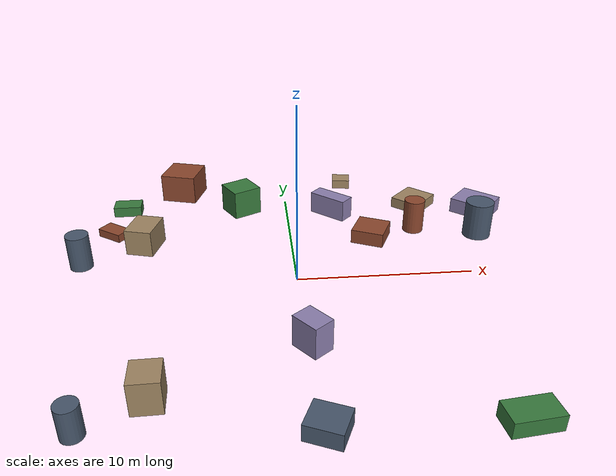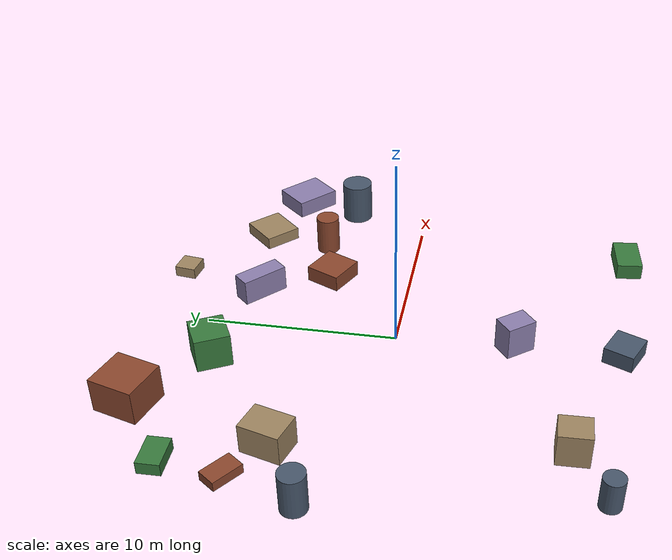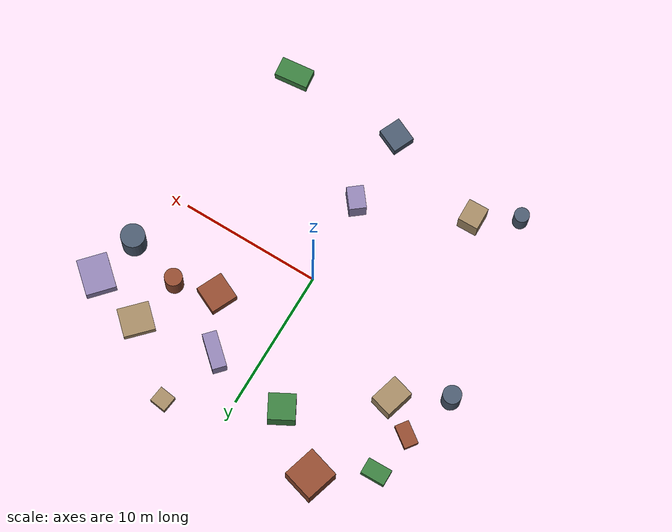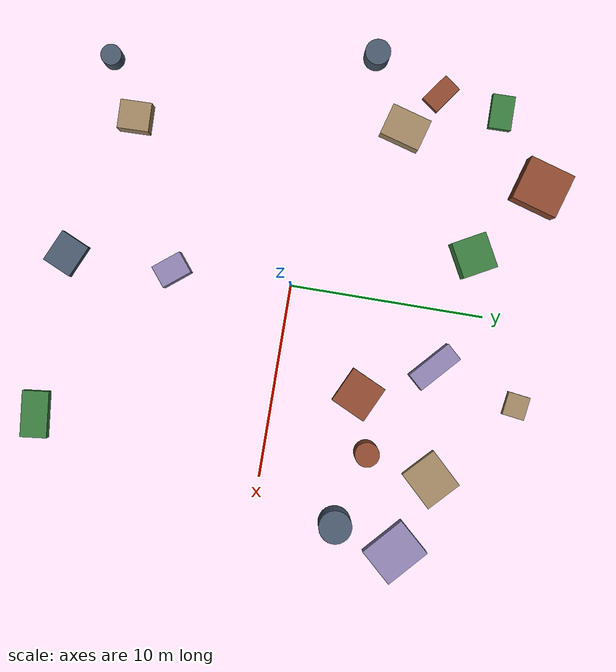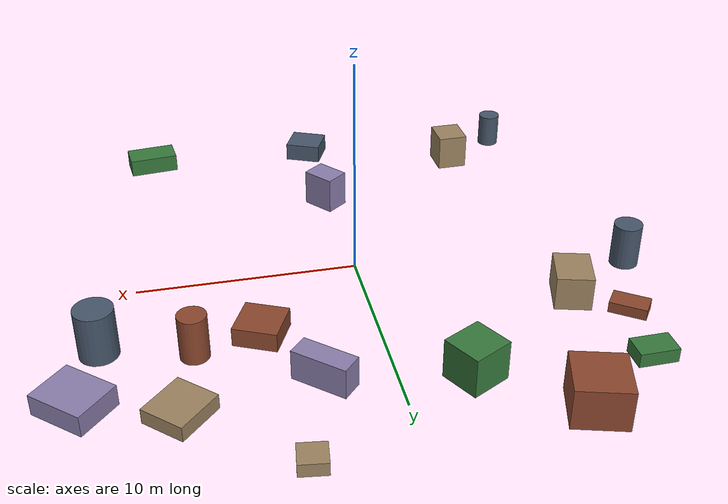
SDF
<sdf version="1.10">
 <world name="robotx_task1_uav_view">
  <gravity>0 0 -9.81</gravity>
  <physics name="physics" type="ode">
   <max_step_size>0.002</max_step_size>
   <real_time_factor>1.0</real_time_factor>
  </physics>
  <scene>
   <ambient>0.22 0.20 0.18 1.0</ambient>
   <background>0.74 0.55 0.44 1.0</background>
   <shadows>true</shadows>
   <grid>false</grid>
  </scene>
  <light name="sun" type="directional">
   <pose>0 0 300 0 0 0</pose>
   <diffuse>0.95 0.74 0.56 1.0</diffuse>
   <specular>1.00 0.87 0.71 1.0</specular>
   <direction>-0.40 0.20 -0.88</direction>
   <attenuation>
    <range>2500</range>
    <constant>0.85</constant>
    <linear>0.001</linear>
    <quadratic>0.00005</quadratic>
   </attenuation>
  </light>
  <plugin filename="gz-sim-physics-system" name="gz::sim::systems::Physics"/>
  <plugin filename="gz-sim-user-commands-system" name="gz::sim::systems::UserCommands"/>
  <plugin filename="gz-sim-scene-broadcaster-system" name="gz::sim::systems::SceneBroadcaster"/>
  <plugin filename="gz-sim-sensors-system" name="gz::sim::systems::Sensors">
   <render_engine>ogre2</render_engine>
  </plugin>
  <model name="scene_clutter_box_000">
   <static>true</static>
   <pose>4.206 12.406 0.317 0 0 3.008842</pose>
   <link name="link">
    <visual name="v">
     <geometry><box><size>1.195 1.147 0.593</size></box></geometry>
     <material><ambient>0.45 0.38 0.32 1.0</ambient><diffuse>0.62 0.52 0.38 1.0</diffuse></material>
    </visual>
   </link>
  </model>
  <model name="scene_clutter_cyl_001">
   <static>true</static>
   <pose>-12.269 2.422 1.083 0 0 -0.341812</pose>
   <link name="link">
    <visual name="v">
     <geometry><cylinder><radius>0.649</radius><length>2.065</length></cylinder></geometry>
     <material><ambient>0.18 0.22 0.28 1.0</ambient><diffuse>0.28 0.34 0.42 1.0</diffuse></material>
    </visual>
   </link>
  </model>
  <model name="scene_clutter_box_002">
   <static>true</static>
   <pose>-6.965 11.778 0.937 0 0 -1.853826</pose>
   <link name="link">
    <visual name="v">
     <geometry><box><size>2.409 2.314 1.835</size></box></geometry>
     <material><ambient>0.35 0.16 0.12 1.0</ambient><diffuse>0.55 0.28 0.18 1.0</diffuse></material>
    </visual>
   </link>
  </model>
  <model name="scene_clutter_box_003">
   <static>true</static>
   <pose>-3.004 8.917 0.918 0 0 0.498227</pose>
   <link name="link">
    <visual name="v">
     <geometry><box><size>1.876 1.817 1.796</size></box></geometry>
     <material><ambient>0.12 0.30 0.14 1.0</ambient><diffuse>0.22 0.48 0.24 1.0</diffuse></material>
    </visual>
   </link>
  </model>
  <model name="scene_clutter_box_004">
   <static>true</static>
   <pose>2.912 7.903 0.707 0 0 -0.736890</pose>
   <link name="link">
    <visual name="v">
     <geometry><box><size>2.537 1.006 1.374</size></box></geometry>
     <material><ambient>0.40 0.35 0.50 1.0</ambient><diffuse>0.55 0.50 0.68 1.0</diffuse></material>
    </visual>
   </link>
  </model>
  <model name="scene_clutter_box_005">
   <static>true</static>
   <pose>8.648 8.703 0.357 0 0 -2.332566</pose>
   <link name="link">
    <visual name="v">
     <geometry><box><size>2.212 2.010 0.673</size></box></geometry>
     <material><ambient>0.45 0.38 0.32 1.0</ambient><diffuse>0.62 0.52 0.38 1.0</diffuse></material>
    </visual>
   </link>
  </model>
  <model name="scene_clutter_cyl_006">
   <static>true</static>
   <pose>-9.999 -10.845 0.880 0 0 1.343447</pose>
   <link name="link">
    <visual name="v">
     <geometry><cylinder><radius>0.532</radius><length>1.660</length></cylinder></geometry>
     <material><ambient>0.18 0.22 0.28 1.0</ambient><diffuse>0.28 0.34 0.42 1.0</diffuse></material>
    </visual>
   </link>
  </model>
  <model name="scene_clutter_box_007">
   <static>true</static>
   <pose>4.946 4.340 0.451 0 0 2.702315</pose>
   <link name="link">
    <visual name="v">
     <geometry><box><size>1.972 1.954 0.861</size></box></geometry>
     <material><ambient>0.35 0.16 0.12 1.0</ambient><diffuse>0.55 0.28 0.18 1.0</diffuse></material>
    </visual>
   </link>
  </model>
  <model name="scene_clutter_box_008">
   <static>true</static>
   <pose>-10.515 9.218 0.344 0 0 -1.555133</pose>
   <link name="link">
    <visual name="v">
     <geometry><box><size>1.153 1.753 0.647</size></box></geometry>
     <material><ambient>0.12 0.30 0.14 1.0</ambient><diffuse>0.22 0.48 0.24 1.0</diffuse></material>
    </visual>
   </link>
  </model>
  <model name="scene_clutter_box_009">
   <static>true</static>
   <pose>12.584 7.478 0.491 0 0 0.837091</pose>
   <link name="link">
    <visual name="v">
     <geometry><box><size>2.128 2.538 0.943</size></box></geometry>
     <material><ambient>0.40 0.35 0.50 1.0</ambient><diffuse>0.55 0.50 0.68 1.0</diffuse></material>
    </visual>
   </link>
  </model>
  <model name="scene_clutter_box_010">
   <static>true</static>
   <pose>-8.838 4.440 0.805 0 0 1.298744</pose>
   <link name="link">
    <visual name="v">
     <geometry><box><size>2.109 1.635 1.569</size></box></geometry>
     <material><ambient>0.45 0.38 0.32 1.0</ambient><diffuse>0.62 0.52 0.38 1.0</diffuse></material>
    </visual>
   </link>
  </model>
  <model name="scene_clutter_cyl_011">
   <static>true</static>
   <pose>11.639 4.202 1.176 0 0 -2.665323</pose>
   <link name="link">
    <visual name="v">
     <geometry><cylinder><radius>0.846</radius><length>2.252</length></cylinder></geometry>
     <material><ambient>0.18 0.22 0.28 1.0</ambient><diffuse>0.28 0.34 0.42 1.0</diffuse></material>
    </visual>
   </link>
  </model>
  <model name="scene_clutter_cyl_012">
   <static>true</static>
   <pose>7.807 5.195 1.082 0 0 -2.637378</pose>
   <link name="link">
    <visual name="v">
     <geometry><cylinder><radius>0.628</radius><length>2.064</length></cylinder></geometry>
     <material><ambient>0.35 0.16 0.12 1.0</ambient><diffuse>0.55 0.28 0.18 1.0</diffuse></material>
    </visual>
   </link>
  </model>
  <model name="scene_clutter_box_013">
   <static>true</static>
   <pose>8.631 -11.826 0.442 0 0 0.108623</pose>
   <link name="link">
    <visual name="v">
     <geometry><box><size>2.382 1.365 0.845</size></box></geometry>
     <material><ambient>0.12 0.30 0.14 1.0</ambient><diffuse>0.22 0.48 0.24 1.0</diffuse></material>
    </visual>
   </link>
  </model>
  <model name="scene_clutter_box_014">
   <static>true</static>
   <pose>0.217 -6.071 0.888 0 0 -0.899711</pose>
   <link name="link">
    <visual name="v">
     <geometry><box><size>1.602 1.186 1.736</size></box></geometry>
     <material><ambient>0.40 0.35 0.50 1.0</ambient><diffuse>0.55 0.50 0.68 1.0</diffuse></material>
    </visual>
   </link>
  </model>
  <model name="scene_clutter_box_015">
   <static>true</static>
   <pose>-7.161 -9.177 0.884 0 0 1.594290</pose>
   <link name="link">
    <visual name="v">
     <geometry><box><size>1.599 1.459 1.729</size></box></geometry>
     <material><ambient>0.45 0.38 0.32 1.0</ambient><diffuse>0.62 0.52 0.38 1.0</diffuse></material>
    </visual>
   </link>
  </model>
  <model name="scene_clutter_box_016">
   <static>true</static>
   <pose>0.267 -11.574 0.458 0 0 2.720024</pose>
   <link name="link">
    <visual name="v">
     <geometry><box><size>1.770 1.594 0.876</size></box></geometry>
     <material><ambient>0.18 0.22 0.28 1.0</ambient><diffuse>0.28 0.34 0.42 1.0</diffuse></material>
    </visual>
   </link>
  </model>
  <model name="scene_clutter_box_017">
   <static>true</static>
   <pose>-10.946 6.001 0.273 0 0 2.513664</pose>
   <link name="link">
    <visual name="v">
     <geometry><box><size>1.668 1.008 0.505</size></box></geometry>
     <material><ambient>0.35 0.16 0.12 1.0</ambient><diffuse>0.55 0.28 0.18 1.0</diffuse></material>
    </visual>
   </link>
  </model>
  <model name="uav_dataset_camera">
   <static>false</static>
   <pose>0 0 26 0 0 0</pose>
   <plugin filename="librobotx_overhead_motion_plugin.dylib" name="robotx::OverheadMotionPlugin">
    <radius_x_m>8.56050</radius_x_m>
    <radius_y_m>6.50923</radius_y_m>
    <angular_speed_rad_s>0.052308</angular_speed_rad_s>
    <phase_rad>6.166644</phase_rad>
    <z_wobble_m>0.04949</z_wobble_m>
    <z_wobble_hz>0.06954</z_wobble_hz>
    <z_wobble_phase_rad>5.450415</z_wobble_phase_rad>
   </plugin>
   <link name="camera_link">
    <gravity>false</gravity>
    <sensor name="top_down_rgb" type="camera">
     <always_on>true</always_on>
     <update_rate>20</update_rate>
     <pose>0 0 0 0 1.57079632679 0</pose>
     <camera>
      <horizontal_fov>1.05</horizontal_fov>
      <image><width>1920</width><height>1080</height><format>R8G8B8</format></image>
      <clip><near>0.2</near><far>600</far></clip>
     </camera>
     <topic>/robotx/uav/camera/image_raw</topic>
     <visualize>true</visualize>
    </sensor>
   </link>
  </model>
 </world>
</sdf>
